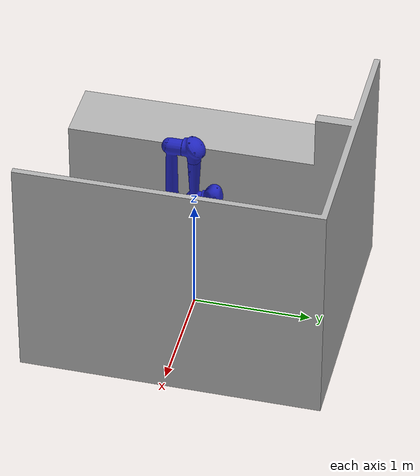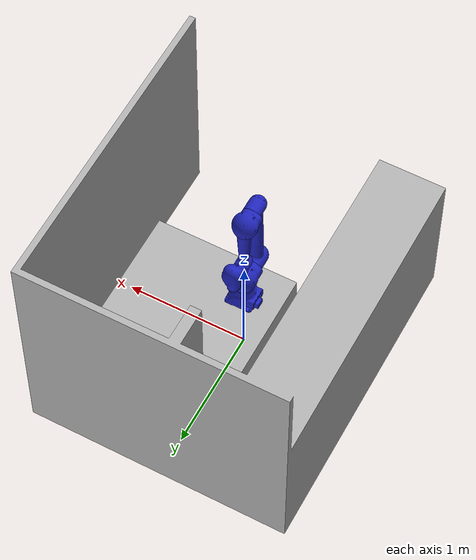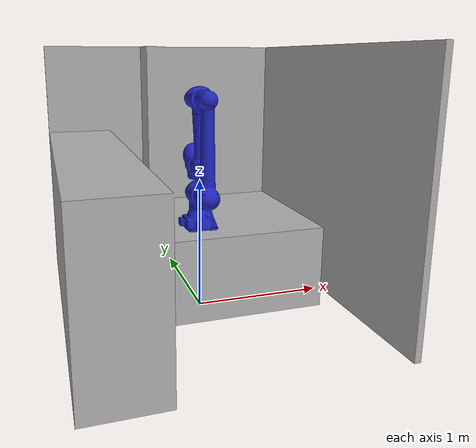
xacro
<?xml version="1.0" ?>

<robot name="robotOnTable" xmlns:xacro="http://www.ros.org/wiki/xacro" >

    <xacro:include filename="$(find hc10_ros)/urdf/materials.xacro" />

    <link name="world" />

    <xacro:include filename="$(find hc10_ros)/urdf/table.xacro" />
    <xacro:include filename="$(find hc10_ros)/urdf/hc10_for_env.urdf" />
    <xacro:include filename="$(find hc10_ros)/urdf/walls.xacro" />

    <joint name="walls_joint" type="fixed">
        <parent link="world" />
        <child link="walls_link" />
    </joint>

    <joint name="table_joint" type="fixed">
        <parent link="world" />
        <child link="table_link" />
    </joint>

    <joint name="link-base" type="fixed">
        <origin rpy="0 0 0" xyz="0 0 0.6375" />
        <parent link="table_link" />
        <child link="base_link" />
    </joint>

</robot>

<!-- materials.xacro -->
<robot name="env" xmlns:xacro="http://www.ros.org/wiki/xacro" >

<material name="silver">
  <color rgba="0.700 0.700 0.700 1.000"/>
</material>

</robot>

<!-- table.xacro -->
<robot name="env" xmlns:xacro="http://www.ros.org/wiki/xacro" >

  <link name="table_link">
    <visual>
      <origin rpy="0 0 0" xyz="0 0 0"/>
      <geometry>
        <mesh filename="package://hc10_ros/meshes/env/table.stl" scale="0.01 0.01 0.01"/>
      </geometry>
      <material name="silver"/>
    </visual>
    <collision>
      <origin rpy="0 0 0" xyz="0 0 0"/>
      <geometry>
        <mesh filename="package://hc10_ros/meshes/env/table.stl" scale="0.01 0.01 0.01"/>
      </geometry>
    </collision>
  </link>

</robot>

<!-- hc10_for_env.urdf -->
<!-- |    This document was autogenerated by xacro from /home/etudiant/rosIn_ws/src/motoman/motoman_hc10_support/urdf/hc10.xacro | -->
<!-- |    EDITING THIS FILE BY HAND IS NOT RECOMMENDED                                 | -->
<robot name="motoman_hc10">

    <!-- Properties -->

    <material name="yaskawa_blue">
        <color rgba="0.12941 0.14902 0.74902 1" />
    </material>

    <!-- link list -->

    <link name="base_link">
        <visual>
            <geometry>
                <mesh filename="package://motoman_hc10_support/meshes/hc10/visual/base_link.dae" />
            </geometry>
            <material name="yaskawa_blue" />
        </visual>
        <collision>
            <geometry>
                <mesh filename="package://motoman_hc10_support/meshes/hc10/collision/base_link.stl" />
            </geometry>
        </collision>
        <inertial>
            <mass value="0.1" />
            <inertia ixx="0.03" iyy="0.03" izz="0.03" ixy="0.0" ixz="0.0" iyz="0.0" />
        </inertial>
    </link>

    <link name="link_1_s">
        <visual>
            <geometry>
                <mesh filename="package://motoman_hc10_support/meshes/hc10/visual/link_1_s.dae" />
            </geometry>
            <material name="yaskawa_blue" />
        </visual>
        <collision>
            <geometry>
                <mesh filename="package://motoman_hc10_support/meshes/hc10/collision/link_1_s.stl" />
            </geometry>
        </collision>
        <inertial>
            <mass value="0.1" />
            <inertia ixx="0.03" iyy="0.03" izz="0.03" ixy="0.0" ixz="0.0" iyz="0.0" />
        </inertial>
    </link>

    <link name="link_2_l">
        <visual>
            <geometry>
                <mesh filename="package://motoman_hc10_support/meshes/hc10/visual/link_2_l.dae" />
            </geometry>
            <material name="yaskawa_blue" />
        </visual>
        <collision>
            <geometry>
                <mesh filename="package://motoman_hc10_support/meshes/hc10/collision/link_2_l.stl" />
            </geometry>
        </collision>
        <inertial>
            <mass value="0.1" />
            <inertia ixx="0.03" iyy="0.03" izz="0.03" ixy="0.0" ixz="0.0" iyz="0.0" />
        </inertial>
    </link>

    <link name="link_3_u">
        <visual>
            <geometry>
                <mesh filename="package://motoman_hc10_support/meshes/hc10/visual/link_3_u.dae" />
            </geometry>
            <material name="yaskawa_blue" />
        </visual>
        <collision>
            <geometry>
                <mesh filename="package://motoman_hc10_support/meshes/hc10/collision/link_3_u.stl" />
            </geometry>
        </collision>
        <inertial>
            <mass value="0.1" />
            <inertia ixx="0.03" iyy="0.03" izz="0.03" ixy="0.0" ixz="0.0" iyz="0.0" />
        </inertial>
    </link>

    <link name="link_4_r">
        <visual>
            <geometry>
                <mesh filename="package://motoman_hc10_support/meshes/hc10/visual/link_4_r.dae" />
            </geometry>
            <material name="yaskawa_blue" />
        </visual>
        <collision>
            <geometry>
                <mesh filename="package://motoman_hc10_support/meshes/hc10/collision/link_4_r.stl" />
            </geometry>
        </collision>
        <inertial>
            <mass value="0.1" />
            <inertia ixx="0.03" iyy="0.03" izz="0.03" ixy="0.0" ixz="0.0" iyz="0.0" />
        </inertial>
    </link>

    <link name="link_5_b">
        <visual>
            <geometry>
                <mesh filename="package://motoman_hc10_support/meshes/hc10/visual/link_5_b.dae" />
            </geometry>
            <material name="yaskawa_blue" />
        </visual>
        <collision>
            <geometry>
                <mesh filename="package://motoman_hc10_support/meshes/hc10/collision/link_5_b.stl" />
            </geometry>
        </collision>
        <inertial>
            <mass value="0.1" />
            <inertia ixx="0.03" iyy="0.03" izz="0.03" ixy="0.0" ixz="0.0" iyz="0.0" />
        </inertial>
    </link>

    <link name="link_6_t">
        <visual>
            <geometry>
                <mesh filename="package://motoman_hc10_support/meshes/hc10/visual/link_6_t.dae" />
            </geometry>
            <material name="yaskawa_blue" />
        </visual>
        <collision>
            <geometry>
                <mesh filename="package://motoman_hc10_support/meshes/hc10/collision/link_6_t.stl" />
            </geometry>
        </collision>
        <inertial>
            <mass value="0.1" />
            <inertia ixx="0.03" iyy="0.03" izz="0.03" ixy="0.0" ixz="0.0" iyz="0.0" />
        </inertial>
    </link>

    <link name="tool0" />

    <!-- end of link list -->

    <!-- joint list -->

    <joint name="joint_1_s" type="revolute">
        <parent link="base_link" />
        <child link="link_1_s" />
        <origin rpy="0 0 0" xyz="0 0 0.275" />
        <axis xyz="0 0 1" />
        <limit effort="368.48" lower="-3.14159265359" upper="3.14159265359" velocity="2.26892802759" />
    </joint>
    <joint name="joint_2_l" type="revolute">
        <parent link="link_1_s" />
        <child link="link_2_l" />
        <origin rpy="0 0 0" xyz="0 0 0" />
        <axis xyz="0 1 0" />
        <limit effort="368.48" lower="-3.14159265359" upper="3.14159265359" velocity="2.26892802759" />
    </joint>
    <joint name="joint_3_u" type="revolute">
        <parent link="link_2_l" />
        <child link="link_3_u" />
        <origin rpy="0 0 0" xyz="0 0 0.700" />
        <axis xyz="0 -1 0" />
        <limit effort="141.12" lower="-0.0872664625997" upper="6.19591884458" velocity="3.14159265359" />
    </joint>
    <joint name="joint_4_r" type="revolute">
        <parent link="link_3_u" />
        <child link="link_4_r" />
        <origin rpy="0 0 0" xyz="0 0 -0.500" />
        <axis xyz="0 0 1" />
        <limit effort="39.20" lower="-3.14159265359" upper="3.14159265359" velocity="3.14159265359" />
    </joint>
    <joint name="joint_5_b" type="revolute">
        <parent link="link_4_r" />
        <child link="link_5_b" />
        <origin rpy="0 0 0" xyz="0 0.162 0" />
        <axis xyz="0 -1 0" />
        <limit effort="31.36" lower="-3.14159265359" upper="3.14159265359" velocity="4.36332312999" />
    </joint>
    <joint name="joint_6_t" type="revolute">
        <parent link="link_5_b" />
        <child link="link_6_t" />
        <origin rpy="0 0 0" xyz="0 0 0" />
        <axis xyz="0 0 1" />
        <limit effort="31.36" lower="-3.14159265359" upper="3.14159265359" velocity="4.36332312999" />
    </joint>
    <joint name="joint_6_t-tool0" type="fixed">
        <origin rpy="3.14159265359 0 0" xyz="0 0 -0.130" />
        <parent link="link_6_t" />
        <child link="tool0" />
    </joint>

    <!-- end of joint list -->

    <transmission name="trans_joint_1_s">
        <type>transmission_interface/SimpleTransmission</type>
        <joint name="joint_1_s">
            <hardwareInterface>hardware_interface/EffortJointInterface</hardwareInterface>
        </joint>
        <actuator name="joint_1_s_motor">
            <hardwareInterface>hardware_interface/EffortJointInterface</hardwareInterface>
            <mechanicalReduction>1</mechanicalReduction>
        </actuator>
    </transmission>

    <transmission name="trans_joint_2_l">
        <type>transmission_interface/SimpleTransmission</type>
        <joint name="joint_2_l">
            <hardwareInterface>hardware_interface/EffortJointInterface</hardwareInterface>
        </joint>
        <actuator name="joint_2_l_motor">
            <hardwareInterface>hardware_interface/EffortJointInterface</hardwareInterface>
            <mechanicalReduction>1</mechanicalReduction>
        </actuator>
    </transmission>

    <transmission name="trans_joint_3_u">
        <type>transmission_interface/SimpleTransmission</type>
        <joint name="joint_3_u">
            <hardwareInterface>hardware_interface/EffortJointInterface</hardwareInterface>
        </joint>
        <actuator name="joint_3_u_motor">
            <hardwareInterface>hardware_interface/EffortJointInterface</hardwareInterface>
            <mechanicalReduction>1</mechanicalReduction>
        </actuator>
    </transmission>

    <transmission name="trans_joint_4_r">
        <type>transmission_interface/SimpleTransmission</type>
        <joint name="joint_4_r">
            <hardwareInterface>hardware_interface/EffortJointInterface</hardwareInterface>
        </joint>
        <actuator name="joint_4_r_motor">
            <hardwareInterface>hardware_interface/EffortJointInterface</hardwareInterface>
            <mechanicalReduction>1</mechanicalReduction>
        </actuator>
    </transmission>

    <transmission name="trans_joint_5_b">
        <type>transmission_interface/SimpleTransmission</type>
        <joint name="joint_5_b">
            <hardwareInterface>hardware_interface/EffortJointInterface</hardwareInterface>
        </joint>
        <actuator name="joint_5_b_motor">
            <hardwareInterface>hardware_interface/EffortJointInterface</hardwareInterface>
            <mechanicalReduction>1</mechanicalReduction>
        </actuator>
    </transmission>

    <transmission name="trans_joint_6_t">
        <type>transmission_interface/SimpleTransmission</type>
        <joint name="joint_6_t">
            <hardwareInterface>hardware_interface/EffortJointInterface</hardwareInterface>
        </joint>
        <actuator name="joint_6_t_motor">
            <hardwareInterface>hardware_interface/EffortJointInterface</hardwareInterface>
            <mechanicalReduction>1</mechanicalReduction>
        </actuator>
    </transmission>

    <gazebo>
        <plugin name="gazebo_ros_control" filename="libgazebo_ros_control.so">
            <robotNamespace>/motoman_hc10</robotNamespace>
            <robotSimType>gazebo_ros_control/DefaultRobotHWSim</robotSimType>
        </plugin>
    </gazebo>
</robot>

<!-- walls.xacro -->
<robot name="env" xmlns:xacro="http://www.ros.org/wiki/xacro">

  <link name="walls_link">
    <inertial>
      <origin rpy="0 0 0" xyz="-0.04720668354347962 0.018066716841360707 0.07080670574116438"/>
      <mass value="17.370821533898557"/>
      <inertia ixx="0.142346" ixy="-0.012291" ixz="-0.015362" iyy="0.109318" iyz="-0.007628" izz="0.181525"/>
    </inertial>
    <visual>
      <origin rpy="0 0 0" xyz="0 0 0"/>
      <geometry>
        <mesh filename="package://hc10_ros/meshes/env/walls.stl" scale="0.01 0.01 0.01"/>
      </geometry>
      <material name="silver"/>
    </visual>
    <collision>
      <origin rpy="0 0 0" xyz="0 0 0"/>
      <geometry>
        <mesh filename="package://hc10_ros/meshes/env/walls.stl" scale="0.01 0.01 0.01"/>
      </geometry>
    </collision>
  </link>

</robot>
